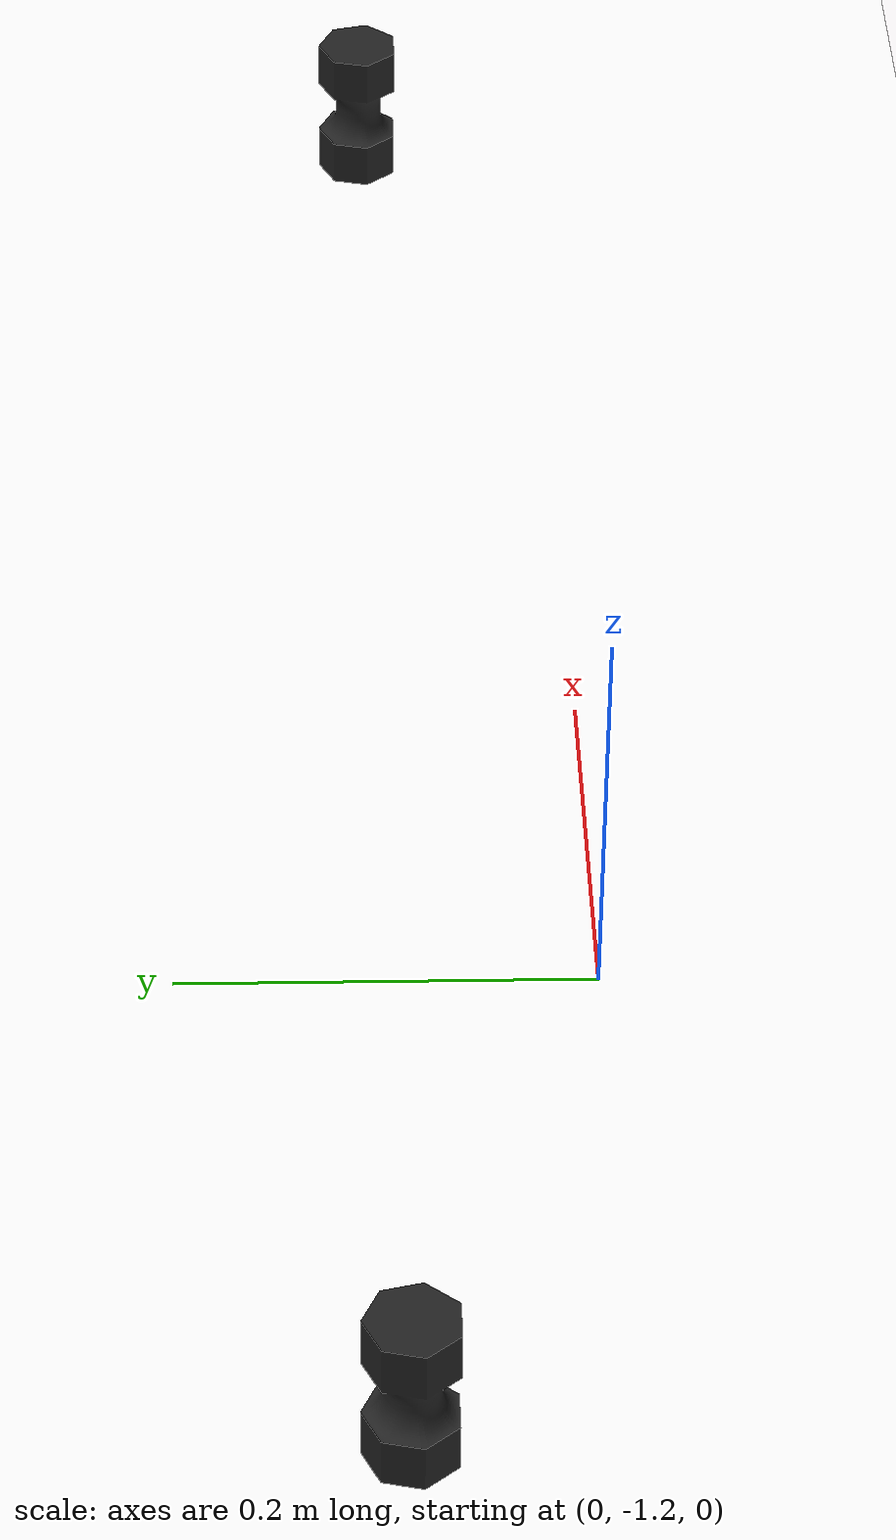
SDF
<?xml version="1.0" ?>
<sdf version="1.4">
  <world name="default">
    <gui>
      <camera name="user_camera">
        <pose>0.078078 0.127889 4.345311 0 1.5708 -3.1415</pose>
      </camera>
    </gui>
    <scene>
      <ambient>0.5 0.5 0.5 1.0</ambient>
      <shadows>0</shadows>
    </scene>
    <include>
      <uri>model://ground_plane</uri>
    </include>
    <include>
      <uri>model://sun</uri>
    </include>
    <include>
      <uri>model://racetrack20</uri>
      <name>race_track20</name>
      <pose>0 0 0 0 0 0</pose>
    </include>
    <include>
      <uri>model://object</uri>
      <name>object</name>
      <pose>-0.305706 -1.123700 0.0 0 0 0</pose>
    </include>
    <include>
      <uri>model://object</uri>
      <name>object2</name>
      <pose>0.688190 -1.121177 0.0 0 0 0</pose>
    </include>

  </world>
</sdf>

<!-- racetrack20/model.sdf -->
<sdf version='1.6'>
  <model name='race_track20'>
    <static>true</static>
    <link name='link'>
      <visual name='visual'>
        <geometry>
          <box>
            <size>2.894 3.50 0.000553</size>
          </box>
        </geometry>
        <material>
          <script>
            <name>RaceTrack20/track20</name>
	    <uri>model://racetrack20/materials/scripts</uri>
            <uri>model://racetrack20/materials/textures</uri>
          </script>
          <ambient>1 1 1 1</ambient>
          <diffuse>1 1 1 1</diffuse>
          <specular>0.01 0.01 0.01 1</specular>
          <emissive>1 1 1 1</emissive>
        </material>
        <transparency>0</transparency>
      </visual>
      <collision name='collision'>
        <geometry>
          <box>
            <size>1.477 1.750 0.000553</size>
          </box>
        </geometry>
	<surface>
          <friction>
            <ode>
              <mu>100</mu>
              <mu2>50</mu2>
            </ode>
          </friction>
        </surface>
      </collision>
    </link>
  </model>
</sdf>

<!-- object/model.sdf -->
<sdf version="1.6">
  <model name="object">
      <static>false</static>
      <link name="body">
        <pose>0 0 0 0 0 0</pose>

        <inertial>
          <mass>0.05</mass>
          <pose>0.01 0.021 0.04 0 0 0</pose>
          <inertia>
            <ixx>0.0003</ixx>
            <iyy>0.0002</iyy>
            <izz>0.0002</izz>
          </inertia>
      </inertial>

        <visual name="vis">
          <geometry>
            <mesh>
         	<uri>model://object/robot_object.dae</uri>
          </mesh>
          </geometry>
        </visual>

        <collision name="col">
          <geometry>
            <mesh>
             <uri>model://object/robot_object.dae</uri>
            </mesh>
          </geometry>
        </collision>
      </link>
  </model>
</sdf>
